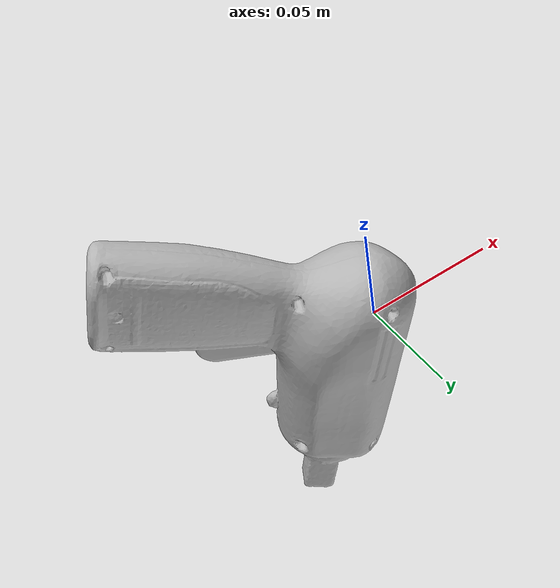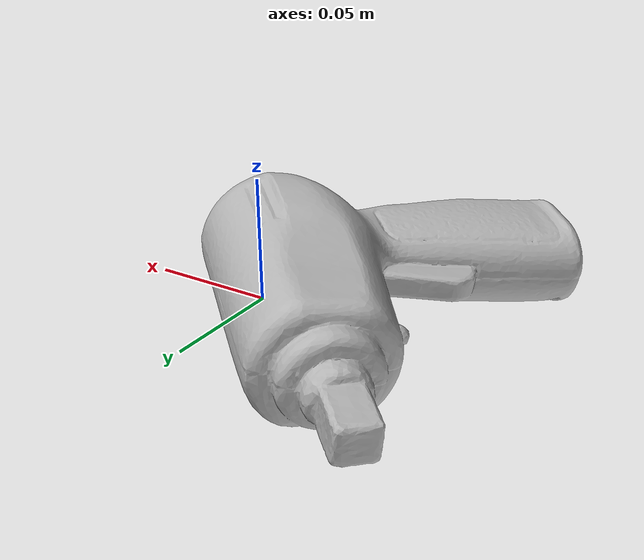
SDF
<?xml version='1.0'?>
<sdf version="1.4">
  <model name="b_toy_airplane">
    <static>false</static>
    <link name="link">
      <inertial>
        <pose>-0.04948007536634334 0.011121747774205814 0.025398688412704606 1.9575902783152896 1.4085011391111553 0.2019986749734053</pose>
        <mass>0.0003467256129755292</mass>
        <inertia>
          <ixx>7.96768248660607e-07</ixx>
          <ixy>2.427126430639414e-23</ixy>
          <ixz>1.7984747477279094e-22</ixz>
          <iyy>6.38839498996755e-07</iyy>
          <iyz>-2.052170865867318e-23</iyz>
          <izz>2.521922211628821e-07</izz>
        </inertia>
      </inertial>
      <collision name="collision">
        <geometry>
          <mesh>
            <!-- Use a downsampled mesh for collisions -->
            <uri>model://072-b_toy_airplane/google_16k/072-b_toy_airplane.obj</uri>
            </mesh>
        </geometry>
        <surface>
          <friction>
            <ode>
              <mu>0.9</mu>
              <mu2>0.9</mu2>
            </ode>
          </friction>
          <contact>
            <ode>
              <kp>1000000000000.0</kp>
              <kd>1</kd>
              <min_depth>0.0001</min_depth>
              <max_vel>0.01</max_vel>
            </ode>
          </contact>
          <bounce>
            <restitution_coefficient>0.1</restitution_coefficient>
            <threshold>1000.0</threshold>
          </bounce>
        </surface>
      </collision>
      <visual name="visual">
        <geometry>
          <mesh>
            <uri>model://072-b_toy_airplane/google_16k/072-b_toy_airplane.dae</uri>
            </mesh>
        </geometry>
      </visual>
    </link>
  </model>
</sdf>
